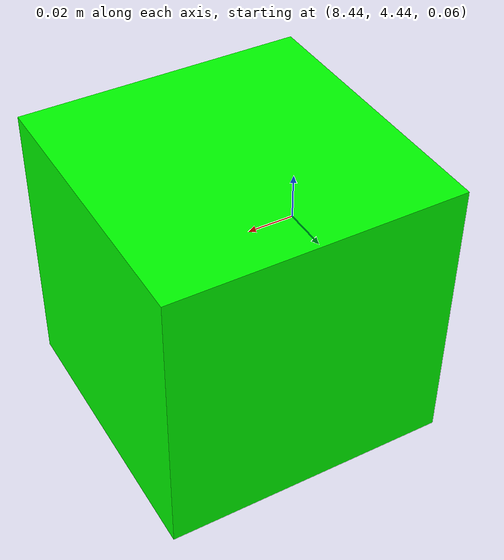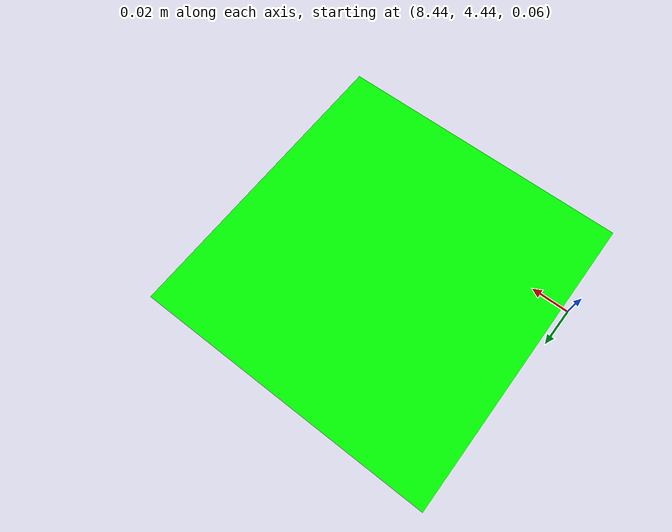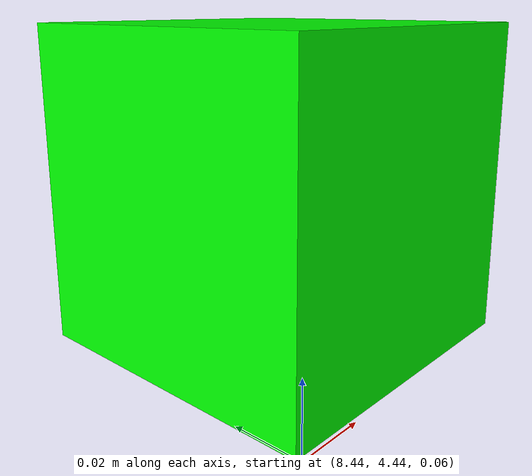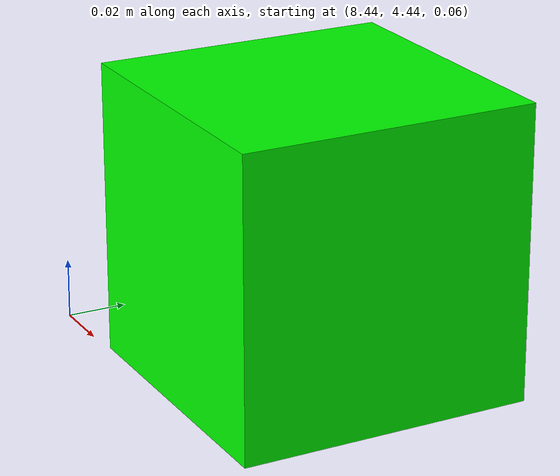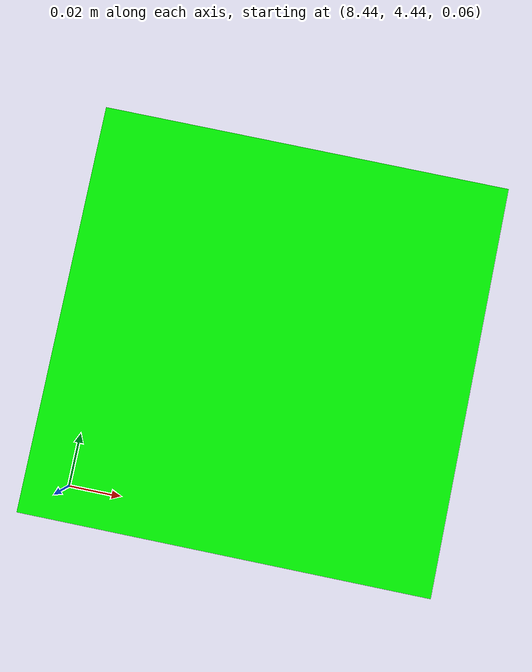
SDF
<?xml version="1.0" ?>
<sdf version="1.4">
  <model name="source_1">
    <pose>8.5 4.5 0.1 0 0 0</pose>
    <static>true</static>
    <link name="link">
      <collision name="collision">
        <geometry>
          <box>
            <size>0.01 0.01 0.01</size>
          </box>
        </geometry>
      </collision>
      <visual name="visual">
        <geometry>
          <box>
            <size>0.1 0.1 0.1</size>
          </box>
        </geometry>
        <material>
          <ambient>0 1 0 1</ambient>
          <diffuse>0 1 0 1</diffuse>
        </material>
      </visual>
      <sensor name="radiation_source_1" type="radiation_source">
        <always_on> 1 </always_on>
        <update_rate> 1.0 </update_rate>
        <topic>source_1/gamma</topic>
        <plugin filename="libradiation_source_plugin.so" name="radiation_source_plugin" />
      </sensor>
    </link>
  </model>
</sdf>
